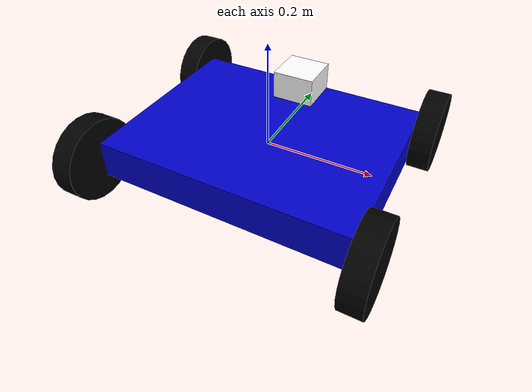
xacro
<?xml version="1.0" ?>
<!-- |    This document was autogenerated by xacro from smartcar.urdf                  | -->
<!-- |    EDITING THIS FILE BY HAND IS NOT RECOMMENDED                                 | -->
<robot name="smartcar">
  <link name="base_link">
    <visual>
      <geometry>
        <box size="0.36 .47 .07"/>
      </geometry>
      <origin rpy="0 0 -1.57075" xyz="0 0 0"/>
      <material name="blue">
        <color rgba="0 0 .8 1"/>
      </material>
    </visual>
  </link>
  <link name="right_front_wheel">
    <visual>
      <geometry>
        <cylinder length=".04" radius="0.0762"/>
      </geometry>
      <material name="black">
        <color rgba="0 0 0 1"/>
      </material>
    </visual>
  </link>
  <joint name="right_front_wheel_joint" type="continuous">
    <axis xyz="0 0 1"/>
    <parent link="base_link"/>
    <child link="right_front_wheel"/>
    <origin rpy="0 1.57075 0" xyz="0.255 0.18 .0"/>
    <limit effort="100" velocity="100"/>
    <joint_properties damping="0.0" friction="0.0"/>
  </joint>
  <link name="right_back_wheel">
    <visual>
      <geometry>
        <cylinder length=".04" radius="0.0762"/>
      </geometry>
      <material name="black">
        <color rgba="0 0 0 1"/>
      </material>
    </visual>
  </link>
  <joint name="right_back_wheel_joint" type="continuous">
    <axis xyz="0 0 1"/>
    <parent link="base_link"/>
    <child link="right_back_wheel"/>
    <origin rpy="0 1.57075 0" xyz="0.255 -0.18 -0.0"/>
    <limit effort="100" velocity="100"/>
    <joint_properties damping="0.0" friction="0.0"/>
  </joint>
  <link name="left_front_wheel">
    <visual>
      <geometry>
        <cylinder length=".04" radius="0.0762"/>
      </geometry>
      <material name="black">
        <color rgba="0 0 0 1"/>
      </material>
    </visual>
  </link>
  <joint name="left_front_wheel_joint" type="continuous">
    <axis xyz="0 0 1"/>
    <parent link="base_link"/>
    <child link="left_front_wheel"/>
    <origin rpy="0 1.57075 0" xyz="-0.255 0.18 -0.0"/>
    <limit effort="100" velocity="100"/>
    <joint_properties damping="0.0" friction="0.0"/>
  </joint>
  <link name="left_back_wheel">
    <visual>
      <geometry>
        <cylinder length=".04" radius="0.0762"/>
      </geometry>
      <material name="black">
        <color rgba="0 0 0 1"/>
      </material>
    </visual>
  </link>
  <joint name="left_back_wheel_joint" type="continuous">
    <axis xyz="0 0 1"/>
    <parent link="base_link"/>
    <child link="left_back_wheel"/>
    <origin rpy="0 1.57075 0" xyz="-0.255 -0.18 -0.0"/>
    <limit effort="100" velocity="100"/>
    <joint_properties damping="0.0" friction="0.0"/>
  </joint>
  <link name="head">
    <visual>
      <geometry>
        <box size=".08 .08 .057"/>
      </geometry>
      <material name="white">
        <color rgba="1 1 1 1"/>
      </material>
    </visual>
  </link>
  <joint name="tobox" type="fixed">
    <parent link="base_link"/>
    <child link="head"/>
    <origin xyz="0 0.14 0.061"/>
  </joint>
</robot>
